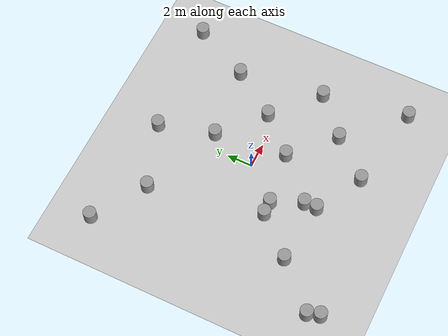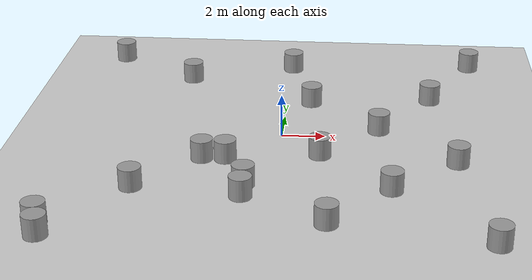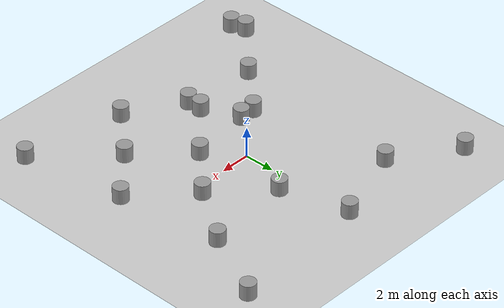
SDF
<sdf version="1.7">
 <world name="default">
  <light name="sun" type="directional">
   <pose>0 0 10 0 -0 0</pose>
   <diffuse>0.8 0.8 0.8 1</diffuse>
   <specular>0.2 0.2 0.2 1</specular>
   <attenuation>
    <range>1000</range>
    <constant>0.9</constant>
    <linear>0.01</linear>
    <quadratic>0.001</quadratic>
   </attenuation>
   <direction>-0.5 0.1 -0.9</direction>
   <spot><inner_angle>0</inner_angle><outer_angle>0</outer_angle><falloff>0</falloff></spot>
  </light>
  <model name="ground_plane">
   <static>1</static>
   <link name="link">
    <collision name="collision">
     <geometry><plane><normal>0 0 1</normal><size>100 100</size></plane></geometry>
     <surface>
      <contact><collide_bitmask>65535</collide_bitmask></contact>
      <friction><ode><mu>100</mu><mu2>50</mu2></ode></friction>
     </surface>
    </collision>
    <visual name="visual">
     <cast_shadows>0</cast_shadows>
     <geometry><plane><normal>0 0 1</normal><size>100 100</size></plane></geometry>
     <material>
      <script><uri>file://media/materials/scripts/gazebo.material</uri><name>Gazebo/Grey</name></script>
     </material>
    </visual>
   </link>
  </model>
  <gravity>0 0 -9.8</gravity>
  <magnetic_field>6e-06 2.3e-05 -4.2e-05</magnetic_field>
  <atmosphere type="adiabatic"/>
  <physics type="ode">
   <max_step_size>0.001</max_step_size>
   <real_time_factor>1</real_time_factor>
   <real_time_update_rate>1000</real_time_update_rate>
  </physics>
  <scene><ambient>0.4 0.4 0.4 1</ambient><background>0.7 0.7 0.7 1</background><shadows>1</shadows></scene>
  <spherical_coordinates>
   <surface_model>EARTH_WGS84</surface_model>
   <latitude_deg>0</latitude_deg>
   <longitude_deg>0</longitude_deg>
   <elevation>0</elevation>
   <heading_deg>0</heading_deg>
  </spherical_coordinates>
  <model name="unit_cylinder">
   <pose>-8.88139 -9.71348 0.499996 -1e-06 -0 0.007599</pose>
   <link name="link">
    <inertial>
     <mass>1</mass>
     <inertia><ixx>0.145833</ixx><ixy>0</ixy><ixz>0</ixz><iyy>0.145833</iyy><iyz>0</iyz><izz>0.125</izz></inertia>
    </inertial>
    <collision name="collision">
     <geometry><cylinder><radius>0.5</radius><length>1</length></cylinder></geometry>
    </collision>
    <visual name="visual">
     <geometry><cylinder><radius>0.5</radius><length>1</length></cylinder></geometry>
     <material>
      <script><name>Gazebo/Grey</name><uri>file://media/materials/scripts/gazebo.material</uri></script>
     </material>
    </visual>
   </link>
  </model>
  <model name="unit_cylinder_0">
   <pose>-9.18022 -8.75916 0.499994 -3e-06 -1e-06 -0.000172</pose>
   <link name="link">
    <inertial>
     <mass>1</mass>
     <inertia><ixx>0.145833</ixx><ixy>0</ixy><ixz>0</ixz><iyy>0.145833</iyy><iyz>0</iyz><izz>0.125</izz></inertia>
    </inertial>
    <collision name="collision">
     <geometry><cylinder><radius>0.5</radius><length>1</length></cylinder></geometry>
    </collision>
    <visual name="visual">
     <geometry><cylinder><radius>0.5</radius><length>1</length></cylinder></geometry>
     <material>
      <script><name>Gazebo/Grey</name><uri>file://media/materials/scripts/gazebo.material</uri></script>
     </material>
    </visual>
   </link>
  </model>
  <model name="unit_cylinder_1">
   <pose>9.07948 -9.15532 0.499996 3e-06 1e-06 -0</pose>
   <link name="link">
    <inertial>
     <mass>1</mass>
     <inertia><ixx>0.145833</ixx><ixy>0</ixy><ixz>0</ixz><iyy>0.145833</iyy><iyz>0</iyz><izz>0.125</izz></inertia>
    </inertial>
    <collision name="collision">
     <geometry><cylinder><radius>0.5</radius><length>1</length></cylinder></geometry>
    </collision>
    <visual name="visual">
     <geometry><cylinder><radius>0.5</radius><length>1</length></cylinder></geometry>
     <material>
      <script><name>Gazebo/Grey</name><uri>file://media/materials/scripts/gazebo.material</uri></script>
     </material>
    </visual>
   </link>
  </model>
  <model name="unit_cylinder_2">
   <pose>-9.11526 8.88735 0.499996 3e-06 1e-06 -0</pose>
   <link name="link">
    <inertial>
     <mass>1</mass>
     <inertia><ixx>0.145833</ixx><ixy>0</ixy><ixz>0</ixz><iyy>0.145833</iyy><iyz>0</iyz><izz>0.125</izz></inertia>
    </inertial>
    <collision name="collision">
     <geometry><cylinder><radius>0.5</radius><length>1</length></cylinder></geometry>
    </collision>
    <visual name="visual">
     <geometry><cylinder><radius>0.5</radius><length>1</length></cylinder></geometry>
     <material>
      <script><name>Gazebo/Grey</name><uri>file://media/materials/scripts/gazebo.material</uri></script>
     </material>
    </visual>
   </link>
  </model>
  <model name="unit_cylinder_3">
   <pose>9.19883 8.74933 0.499994 -3e-06 -1e-06 0.01098</pose>
   <link name="link">
    <inertial>
     <mass>1</mass>
     <inertia><ixx>0.145833</ixx><ixy>0</ixy><ixz>0</ixz><iyy>0.145833</iyy><iyz>0</iyz><izz>0.125</izz></inertia>
    </inertial>
    <collision name="collision">
     <geometry><cylinder><radius>0.5</radius><length>1</length></cylinder></geometry>
    </collision>
    <visual name="visual">
     <geometry><cylinder><radius>0.5</radius><length>1</length></cylinder></geometry>
     <material>
      <script><name>Gazebo/Grey</name><uri>file://media/materials/scripts/gazebo.material</uri></script>
     </material>
    </visual>
   </link>
  </model>
  <model name="unit_cylinder_4">
   <pose>-1.26477 -4.98801 0.499996 4e-06 2e-06 -0</pose>
   <link name="link">
    <inertial>
     <mass>1</mass>
     <inertia><ixx>0.145833</ixx><ixy>0</ixy><ixz>0</ixz><iyy>0.145833</iyy><iyz>0</iyz><izz>0.125</izz></inertia>
    </inertial>
    <collision name="collision">
     <geometry><cylinder><radius>0.5</radius><length>1</length></cylinder></geometry>
    </collision>
    <visual name="visual">
     <geometry><cylinder><radius>0.5</radius><length>1</length></cylinder></geometry>
     <material>
      <script><name>Gazebo/Grey</name><uri>file://media/materials/scripts/gazebo.material</uri></script>
     </material>
    </visual>
   </link>
  </model>
  <model name="unit_cylinder_4_clone">
   <pose>-1.26829 -5.99406 0.499998 3e-06 -2e-06 0</pose>
   <link name="link">
    <inertial>
     <mass>1</mass>
     <inertia><ixx>0.145833</ixx><ixy>0</ixy><ixz>0</ixz><iyy>0.145833</iyy><iyz>0</iyz><izz>0.125</izz></inertia>
    </inertial>
    <collision name="collision">
     <geometry><cylinder><radius>0.5</radius><length>1</length></cylinder></geometry>
    </collision>
    <visual name="visual">
     <geometry><cylinder><radius>0.5</radius><length>1</length></cylinder></geometry>
     <material>
      <script><name>Gazebo/Grey</name><uri>file://media/materials/scripts/gazebo.material</uri></script>
     </material>
    </visual>
   </link>
  </model>
  <model name="unit_cylinder_5">
   <pose>2.38787 -8.01976 0.499994 -4e-06 -3e-06 -0</pose>
   <link name="link">
    <inertial>
     <mass>1</mass>
     <inertia><ixx>0.145833</ixx><ixy>0</ixy><ixz>0</ixz><iyy>0.145833</iyy><iyz>0</iyz><izz>0.125</izz></inertia>
    </inertial>
    <collision name="collision">
     <geometry><cylinder><radius>0.5</radius><length>1</length></cylinder></geometry>
    </collision>
    <visual name="visual">
     <geometry><cylinder><radius>0.5</radius><length>1</length></cylinder></geometry>
     <material>
      <script><name>Gazebo/Grey</name><uri>file://media/materials/scripts/gazebo.material</uri></script>
     </material>
    </visual>
   </link>
  </model>
  <model name="unit_cylinder_6">
   <pose>1.85486 -2.02632 0.499998 3e-06 4e-06 -0</pose>
   <link name="link">
    <inertial>
     <mass>1</mass>
     <inertia><ixx>0.145833</ixx><ixy>0</ixy><ixz>0</ixz><iyy>0.145833</iyy><iyz>0</iyz><izz>0.125</izz></inertia>
    </inertial>
    <collision name="collision">
     <geometry><cylinder><radius>0.5</radius><length>1</length></cylinder></geometry>
    </collision>
    <visual name="visual">
     <geometry><cylinder><radius>0.5</radius><length>1</length></cylinder></geometry>
     <material>
      <script><name>Gazebo/Grey</name><uri>file://media/materials/scripts/gazebo.material</uri></script>
     </material>
    </visual>
   </link>
  </model>
  <model name="unit_cylinder_7">
   <pose>5.01313 -5.06331 0.499997 3e-06 2e-06 0</pose>
   <link name="link">
    <inertial>
     <mass>1</mass>
     <inertia><ixx>0.145833</ixx><ixy>0</ixy><ixz>0</ixz><iyy>0.145833</iyy><iyz>0</iyz><izz>0.125</izz></inertia>
    </inertial>
    <collision name="collision">
     <geometry><cylinder><radius>0.5</radius><length>1</length></cylinder></geometry>
    </collision>
    <visual name="visual">
     <geometry><cylinder><radius>0.5</radius><length>1</length></cylinder></geometry>
     <material>
      <script><name>Gazebo/Grey</name><uri>file://media/materials/scripts/gazebo.material</uri></script>
     </material>
    </visual>
   </link>
  </model>
  <model name="unit_cylinder_8">
   <pose>4.47042 0.710126 0.499998 3e-06 -2e-06 0</pose>
   <link name="link">
    <inertial>
     <mass>1</mass>
     <inertia><ixx>0.145833</ixx><ixy>0</ixy><ixz>0</ixz><iyy>0.145833</iyy><iyz>0</iyz><izz>0.125</izz></inertia>
    </inertial>
    <collision name="collision">
     <geometry><cylinder><radius>0.5</radius><length>1</length></cylinder></geometry>
    </collision>
    <visual name="visual">
     <geometry><cylinder><radius>0.5</radius><length>1</length></cylinder></geometry>
     <material>
      <script><name>Gazebo/Grey</name><uri>file://media/materials/scripts/gazebo.material</uri></script>
     </material>
    </visual>
   </link>
  </model>
  <model name="unit_cylinder_10">
   <pose>-5.99624 -5.53295 0.499994 -4e-06 -2e-06 -0</pose>
   <link name="link">
    <inertial>
     <mass>1</mass>
     <inertia><ixx>0.145833</ixx><ixy>0</ixy><ixz>0</ixz><iyy>0.145833</iyy><iyz>0</iyz><izz>0.125</izz></inertia>
    </inertial>
    <collision name="collision">
     <geometry><cylinder><radius>0.5</radius><length>1</length></cylinder></geometry>
    </collision>
    <visual name="visual">
     <geometry><cylinder><radius>0.5</radius><length>1</length></cylinder></geometry>
     <material>
      <script><name>Gazebo/Grey</name><uri>file://media/materials/scripts/gazebo.material</uri></script>
     </material>
    </visual>
   </link>
  </model>
  <model name="unit_cylinder_9">
   <pose>0.006704 7.99862 0.499994 -4e-06 -2e-06 -0</pose>
   <link name="link">
    <inertial>
     <mass>1</mass>
     <inertia><ixx>0.145833</ixx><ixy>0</ixy><ixz>0</ixz><iyy>0.145833</iyy><iyz>0</iyz><izz>0.125</izz></inertia>
    </inertial>
    <collision name="collision">
     <geometry><cylinder><radius>0.5</radius><length>1</length></cylinder></geometry>
    </collision>
    <visual name="visual">
     <geometry><cylinder><radius>0.5</radius><length>1</length></cylinder></geometry>
     <material>
      <script><name>Gazebo/Grey</name><uri>file://media/materials/scripts/gazebo.material</uri></script>
     </material>
    </visual>
   </link>
  </model>
  <model name="unit_cylinder_11">
   <pose>-5.06174 6.25412 0.499997 4e-06 2e-06 -0</pose>
   <link name="link">
    <inertial>
     <mass>1</mass>
     <inertia><ixx>0.145833</ixx><ixy>0</ixy><ixz>0</ixz><iyy>0.145833</iyy><iyz>0</iyz><izz>0.125</izz></inertia>
    </inertial>
    <collision name="collision">
     <geometry><cylinder><radius>0.5</radius><length>1</length></cylinder></geometry>
    </collision>
    <visual name="visual">
     <geometry><cylinder><radius>0.5</radius><length>1</length></cylinder></geometry>
     <material>
      <script><name>Gazebo/Grey</name><uri>file://media/materials/scripts/gazebo.material</uri></script>
     </material>
    </visual>
   </link>
  </model>
  <model name="unit_cylinder_12">
   <pose>1.18414 3.66671 0.499998 3e-06 -2e-06 0</pose>
   <link name="link">
    <inertial>
     <mass>1</mass>
     <inertia><ixx>0.145833</ixx><ixy>0</ixy><ixz>0</ixz><iyy>0.145833</iyy><iyz>0</iyz><izz>0.125</izz></inertia>
    </inertial>
    <collision name="collision">
     <geometry><cylinder><radius>0.5</radius><length>1</length></cylinder></geometry>
    </collision>
    <visual name="visual">
     <geometry><cylinder><radius>0.5</radius><length>1</length></cylinder></geometry>
     <material>
      <script><name>Gazebo/Grey</name><uri>file://media/materials/scripts/gazebo.material</uri></script>
     </material>
    </visual>
   </link>
  </model>
  <model name="unit_cylinder_13">
   <pose>6.97194 4.30148 0.499998 3e-06 -3e-06 0</pose>
   <link name="link">
    <inertial>
     <mass>1</mass>
     <inertia><ixx>0.145833</ixx><ixy>0</ixy><ixz>0</ixz><iyy>0.145833</iyy><iyz>0</iyz><izz>0.125</izz></inertia>
    </inertial>
    <collision name="collision">
     <geometry><cylinder><radius>0.5</radius><length>1</length></cylinder></geometry>
    </collision>
    <visual name="visual">
     <geometry><cylinder><radius>0.5</radius><length>1</length></cylinder></geometry>
     <material>
      <script><name>Gazebo/Grey</name><uri>file://media/materials/scripts/gazebo.material</uri></script>
     </material>
    </visual>
   </link>
  </model>
  <model name="unit_cylinder_15">
   <pose>7.94449 -2.42251 0.499993 -0 -0 -0</pose>
   <link name="link">
    <inertial>
     <mass>1</mass>
     <inertia><ixx>0.145833</ixx><ixy>0</ixy><ixz>0</ixz><iyy>0.145833</iyy><iyz>0</iyz><izz>0.125</izz></inertia>
    </inertial>
    <collision name="collision">
     <geometry><cylinder><radius>0.5</radius><length>1</length></cylinder></geometry>
    </collision>
    <visual name="visual">
     <geometry><cylinder><radius>0.5</radius><length>1</length></cylinder></geometry>
     <material>
      <script><name>Gazebo/Grey</name><uri>file://media/materials/scripts/gazebo.material</uri></script>
     </material>
    </visual>
   </link>
  </model>
  <model name="unit_cylinder_16">
   <pose>-2.31194 -2.64587 0.499996 3e-06 -3e-06 0</pose>
   <link name="link">
    <inertial>
     <mass>1</mass>
     <inertia><ixx>0.145833</ixx><ixy>0</ixy><ixz>0</ixz><iyy>0.145833</iyy><iyz>0</iyz><izz>0.125</izz></inertia>
    </inertial>
    <collision name="collision">
     <geometry><cylinder><radius>0.5</radius><length>1</length></cylinder></geometry>
    </collision>
    <visual name="visual">
     <geometry><cylinder><radius>0.5</radius><length>1</length></cylinder></geometry>
     <material>
      <script><name>Gazebo/Grey</name><uri>file://media/materials/scripts/gazebo.material</uri></script>
     </material>
    </visual>
   </link>
  </model>
  <model name="unit_cylinder_17">
   <pose>-3.35572 -2.66533 0.499998 3e-06 -4e-06 0</pose>
   <link name="link">
    <inertial>
     <mass>1</mass>
     <inertia><ixx>0.145833</ixx><ixy>0</ixy><ixz>0</ixz><iyy>0.145833</iyy><iyz>0</iyz><izz>0.125</izz></inertia>
    </inertial>
    <collision name="collision">
     <geometry><cylinder><radius>0.5</radius><length>1</length></cylinder></geometry>
    </collision>
    <visual name="visual">
     <geometry><cylinder><radius>0.5</radius><length>1</length></cylinder></geometry>
     <material>
      <script><name>Gazebo/Grey</name><uri>file://media/materials/scripts/gazebo.material</uri></script>
     </material>
    </visual>
   </link>
  </model>
 </world>
</sdf>
